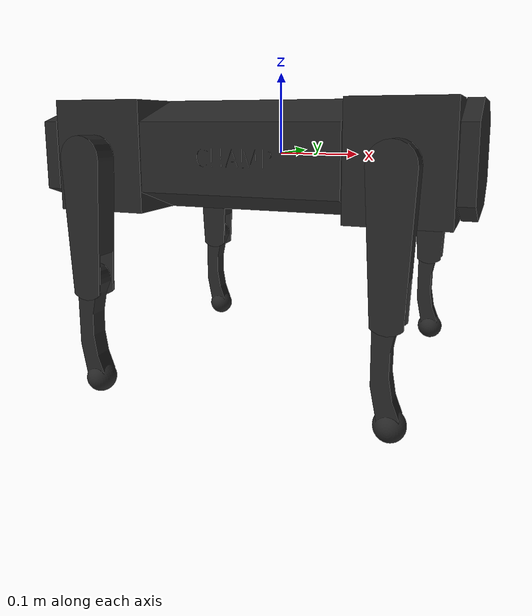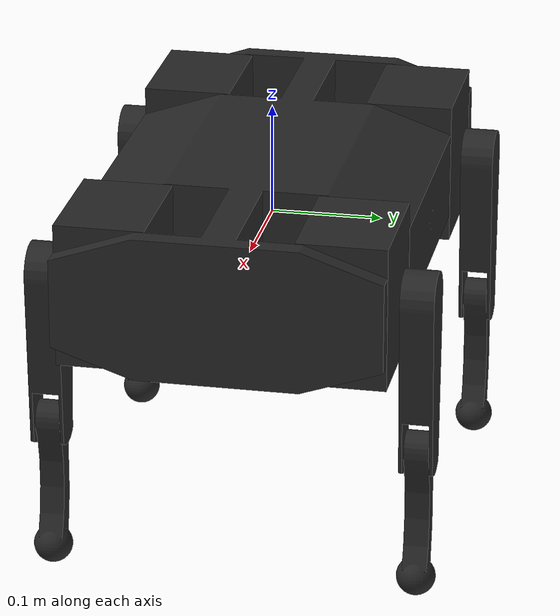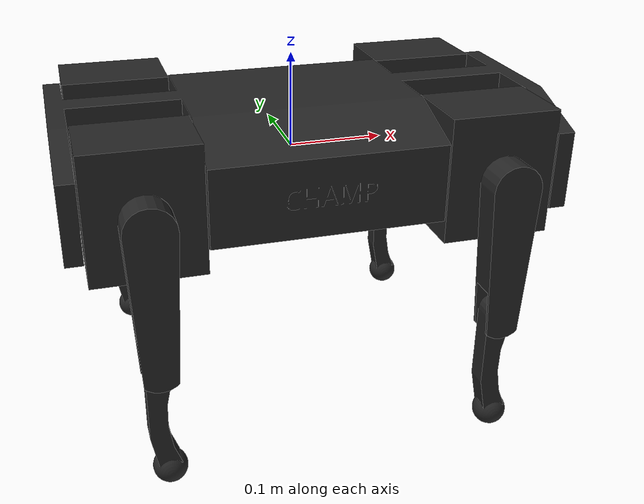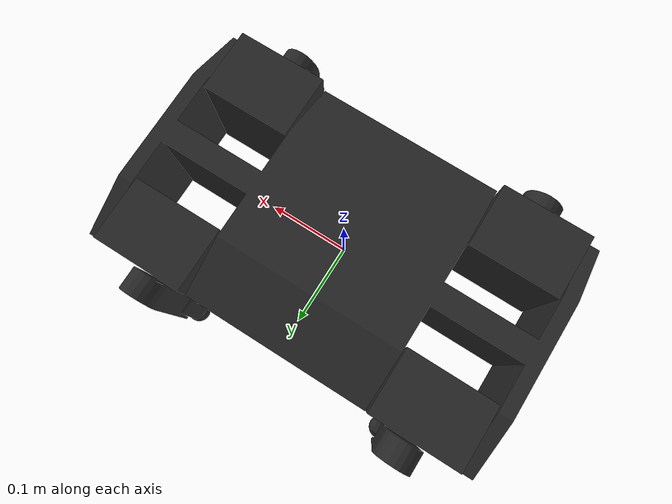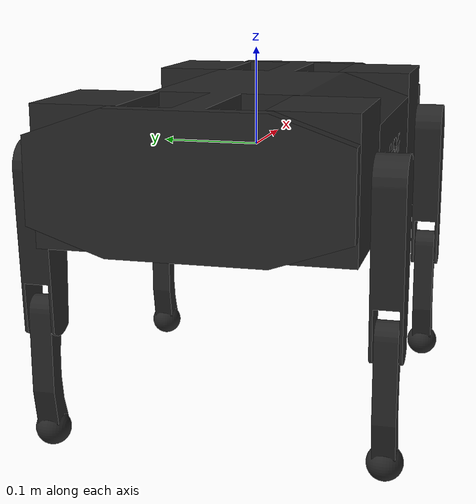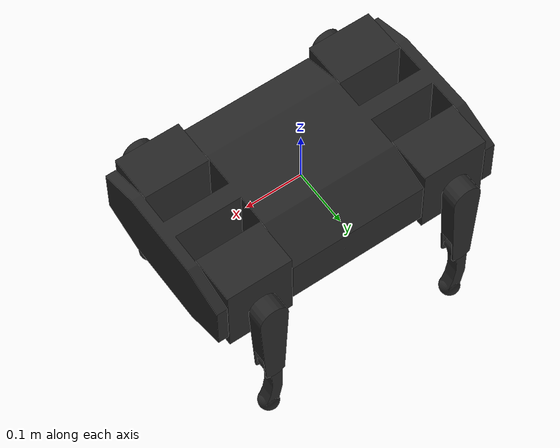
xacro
<?xml version="1.0"?>
<robot name="champ" xmlns:xacro="http://ros.org/wiki/xacro">
    <xacro:include filename="$(find champ_description)/urdf/properties.urdf.xacro" />

    <material name="black">
        <color rgba="0.15 0.15 0.15 1.0" />
    </material>

    <link name="base_link">
        <collision>
            <origin xyz="0 0 0.2" rpy="0 0 0" />
            <geometry>
                <mesh filename="${base_mesh_path}" scale="0.001 0.001 0.001" />
            </geometry>
        </collision>
        <visual>
            <origin xyz="0 0 0" rpy="0 0 0" />
            <geometry>
                <mesh filename="file://$(find champ_description)/meshes/base.stl" scale="0.001 0.001 0.001" />
            </geometry>
            <material name="black" />
        </visual>
    </link>
    <link name="base_inertia">
        <inertial>
            <origin xyz="0 0 0" />
            <mass value="${base_mass}" />
            <inertia ixx="${(1/12) * base_mass * (base_y_length * base_y_length + base_z_length * base_z_length)}" ixy="0.0" ixz="0.0" iyy="${(1/12) * base_mass * (base_x_length * base_x_length + base_z_length * base_z_length)}" iyz="0.0" izz="${(1/12) * base_mass * (base_x_length * base_x_length + base_y_length * base_y_length)}" />
        </inertial>
    </link>

    <joint name="base_link_to_base_inertia" type="fixed">
        <parent link="base_link" />
        <child link="base_inertia" />
        <origin rpy="0 0 0" xyz="0 0 0" />
    </joint>

    <gazebo reference="base_link">
        <material>Gazebo/FlatBlack</material>
    </gazebo>

    <xacro:include filename="$(find champ_description)/urdf/leg.urdf.xacro" />

    <xacro:champ_leg leg="lf" />
    <xacro:champ_leg leg="lh" />
    <xacro:champ_leg leg="rf" />
    <xacro:champ_leg leg="rh" />

    <xacro:include filename="$(find champ_description)/urdf/simulated_full_sensor_suite.xacro" />

    <gazebo>
        <plugin name="p3d_base_controller" filename="libgazebo_ros_p3d.so">
            <ros>
                <namespace></namespace>
                <remapping>odom:=odom/ground_truth</remapping>
            </ros>
            <body_name>base_link</body_name>
            <update_rate>20</update_rate>
            <xyz_offset>0 0 0</xyz_offset>
            <rpy_offset>0.0 0.0 0.0</rpy_offset>
            <gaussian_noise>0.01</gaussian_noise>
        </plugin>
    </gazebo>

    <gazebo>
        <plugin name="gazebo_ros2_control" filename="libgazebo_ros2_control.so">
            <parameters>$(find champ_bringup)/config/ros2_control.yaml</parameters>
        </plugin>
    </gazebo>

</robot>

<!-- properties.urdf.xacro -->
<robot xmlns:xacro="http://ros.org/wiki/xacro">
    <xacro:property name="base_to_hip_x" value="0.175" />
    <xacro:property name="base_to_hip_y" value="0.105" />
    <xacro:property name="hip_to_upper_leg_distance" value="0.06" />
    <xacro:property name="upper_leg_to_lower_leg_distance" value="0.141" />
    <xacro:property name="lower_leg_to_foot_distance" value="0.141" />

    <xacro:property name="hip_mesh_path" value="file://$(find champ_description)/meshes/hip.stl" />
    <xacro:property name="hip_mass" value="0.250" />
    <xacro:property name="hip_x_length" value="0.112" />
    <xacro:property name="hip_y_length" value="0.08" />
    <xacro:property name="hip_z_length" value="0.130" />

    <xacro:property name="upper_leg_mesh_path" value="file://$(find champ_description)/meshes/upper_leg.stl" />
    <xacro:property name="upper_leg_mass" value="0.125" />
    <xacro:property name="upper_leg_x_length" value="0.05" />
    <xacro:property name="upper_leg_y_length" value="0.03" />
    <xacro:property name="upper_leg_z_length" value="0.1905" />

    <xacro:property name="lower_leg_mesh_path" value="file://$(find champ_description)/meshes/lower_leg.stl" />
    <xacro:property name="lower_leg_mass" value="0.125" />
    <xacro:property name="lower_leg_x_length" value="0.039" />
    <xacro:property name="lower_leg_y_length" value="0.022" />
    <xacro:property name="lower_leg_z_length" value="0.156" />

    <xacro:property name="base_mesh_path" value="file://$(find champ_description)/meshes/base.stl" />
    <xacro:property name="base_mass" value="2.0" />
    <xacro:property name="base_x_length" value="0.5" />
    <xacro:property name="base_y_length" value="0.29" />
    <xacro:property name="base_z_length" value="0.130" />
</robot>

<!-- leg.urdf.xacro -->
<robot xmlns:xacro="http://ros.org/wiki/xacro">
    <xacro:macro name="champ_leg" params="leg  ">

        <xacro:if value="${leg == 'lf'}">
            <xacro:property name="base_to_hip_xyz" value="${base_to_hip_x} ${base_to_hip_y} 0" />
            <xacro:property name="hip_to_upper_leg" value="${hip_to_upper_leg_distance}" />
        </xacro:if>

        <xacro:if value="${leg == 'lh'}">
            <xacro:property name="base_to_hip_xyz" value="-${base_to_hip_x} ${base_to_hip_y} 0" />
            <xacro:property name="hip_to_upper_leg" value="${hip_to_upper_leg_distance}" />
        </xacro:if>

        <xacro:if value="${leg == 'rf'}">
            <xacro:property name="base_to_hip_xyz" value="${base_to_hip_x} -${base_to_hip_y} 0" />
            <xacro:property name="hip_to_upper_leg" value="-${hip_to_upper_leg_distance}" />
        </xacro:if>

        <xacro:if value="${leg == 'rh'}">
            <xacro:property name="base_to_hip_xyz" value="-${base_to_hip_x} -${base_to_hip_y} 0" />
            <xacro:property name="hip_to_upper_leg" value="-${hip_to_upper_leg_distance}" />
        </xacro:if>

        <link name="${leg}_hip_debug_link" />

        <link name="${leg}_hip_link">
            <inertial>
                <mass value="${hip_mass}" />
                <inertia ixx="${(1/12) * hip_mass * (hip_y_length * hip_y_length + hip_z_length * hip_z_length)}" ixy="0.0" ixz="0.0" iyy="${(1/12) * hip_mass * (hip_x_length * hip_x_length + hip_z_length * hip_z_length)}" iyz="0.0" izz="${(1/12) * hip_mass * (hip_x_length * hip_x_length + hip_y_length * hip_y_length)}" />
            </inertial>
            <collision>
                <origin xyz="0 0 0" rpy="0 0 0" />
                <geometry>
                    <mesh filename="${hip_mesh_path}" scale="0.001 0.001 0.001" />
                </geometry>
            </collision>
            <visual>
                <origin xyz="0 0 0" rpy="0 0 0" />
                <geometry>
                    <mesh filename="${hip_mesh_path}" scale="0.001 0.001 0.001" />
                </geometry>
                <material name="black" />
            </visual>
        </link>
        <gazebo reference="${leg}_hip_link">
            <material>Gazebo/FlatBlack</material>
        </gazebo>

        <link name="${leg}_upper_leg_link">
            <inertial>
                <origin xyz="0 0 -${(upper_leg_z_length / 2) - ((upper_leg_z_length - upper_leg_to_lower_leg_distance) / 2)}" />
                <mass value="${upper_leg_mass}" />
                <inertia ixx="${(1/12) * upper_leg_mass * (upper_leg_y_length * upper_leg_y_length + upper_leg_z_length * upper_leg_z_length)}" ixy="0.0" ixz="0.0" iyy="${(1/12) * upper_leg_mass * (upper_leg_x_length * upper_leg_x_length + upper_leg_z_length * upper_leg_z_length)}" iyz="0.0" izz="${(1/12) * upper_leg_mass * (upper_leg_x_length * upper_leg_x_length + upper_leg_y_length * upper_leg_y_length)}" />
            </inertial>
            <collision>
                <origin xyz="0 0 0" rpy="0 0 0" />
                <geometry>
                    <mesh filename="${upper_leg_mesh_path}" scale="0.001 0.001 0.001" />
                </geometry>
            </collision>
            <visual>
                <origin xyz="0 0 0" rpy="0 0 0" />
                <geometry>
                    <mesh filename="${upper_leg_mesh_path}" scale="0.001 0.001 0.001" />
                </geometry>
                <material name="black" />
            </visual>
        </link>
        <gazebo reference="${leg}_upper_leg_link">
            <material>Gazebo/FlatBlack</material>
        </gazebo>

        <link name="${leg}_lower_leg_link">
            <inertial>
                <origin xyz="0 0 -${(lower_leg_to_foot_distance - (lower_leg_z_length - lower_leg_to_foot_distance)) / 2}" />
                <mass value="${lower_leg_mass}" />
                <inertia ixx="${(1/12) * lower_leg_mass * (lower_leg_y_length * lower_leg_y_length + lower_leg_z_length * lower_leg_z_length)}" ixy="0.0" ixz="0.0" iyy="${(1/12) * lower_leg_mass * (lower_leg_x_length * lower_leg_x_length + lower_leg_z_length * lower_leg_z_length)}" iyz="0.0" izz="${(1/12) * lower_leg_mass * (lower_leg_x_length * lower_leg_x_length + lower_leg_y_length * lower_leg_y_length)}" />
            </inertial>
            <collision>
                <origin xyz="0 0 0" rpy="0 0 0" />
                <geometry>
                    <mesh filename="${lower_leg_mesh_path}" scale="0.001 0.001 0.001" />
                </geometry>
            </collision>
            <visual>
                <origin xyz="0 0 0" rpy="0 0 0" />
                <geometry>
                    <mesh filename="${lower_leg_mesh_path}" scale="0.001 0.001 0.001" />
                </geometry>
                <material name="black" />
            </visual>
        </link>

        <gazebo reference="${leg}_lower_leg_link">
            <fdir1>1 0 0</fdir1>
            <mu1>100</mu1>
            <mu2>100</mu2>
            <minDepth>0.001</minDepth>
            <material>Gazebo/Red</material>
        </gazebo>

        <link name="${leg}_foot_link" />

        <joint name="${leg}_debug_joint" type="fixed">
            <parent link="base_link" />
            <child link="${leg}_hip_debug_link" />
            <origin xyz="${base_to_hip_xyz}" rpy="0 0 0" />
        </joint>

        <joint name="${leg}_hip_joint" type="revolute">
            <axis xyz="1 0 0" />
            <limit effort="25" lower="-${pi}" upper="${pi}" velocity="1.5" />
            <parent link="base_link" />
            <child link="${leg}_hip_link" />
            <origin xyz="${base_to_hip_xyz}" rpy="0 0 0" />
        </joint>

        <joint name="${leg}_upper_leg_joint" type="revolute">
            <axis xyz="0 1 0" />
            <limit effort="25" lower="-${pi}" upper="${pi}" velocity="1.5" />
            <parent link="${leg}_hip_link" />
            <child link="${leg}_upper_leg_link" />
            <origin xyz="0 ${hip_to_upper_leg} 0" rpy="0 0 0" />
        </joint>

        <joint name="${leg}_lower_leg_joint" type="revolute">
            <axis xyz="0 1 0" />
            <limit effort="25" lower="-${pi}" upper="${pi}" velocity="1.5" />
            <parent link="${leg}_upper_leg_link" />
            <child link="${leg}_lower_leg_link" />
            <origin xyz="0 0 -${upper_leg_to_lower_leg_distance}" rpy="0 0 0" />
        </joint>

        <joint name="${leg}_foot_joint" type="fixed">
            <parent link="${leg}_lower_leg_link" />
            <child link="${leg}_foot_link" />
            <origin xyz="0 0 -${lower_leg_to_foot_distance}" rpy="0 0 0" />
        </joint>

        <ros2_control name="GazeboSystem" type="system">
            <hardware>
                <plugin>gazebo_ros2_control/GazeboSystem</plugin>
            </hardware>
            <joint name="${leg}_hip_joint">
                <command_interface name="position">
                    <param name="min">-${pi}</param>
                    <param name="max">${pi}</param>
                </command_interface>
                <state_interface name="position" />
                <state_interface name="velocity" />
                <state_interface name="effort" />
            </joint>
            <joint name="${leg}_upper_leg_joint">
                <command_interface name="position">
                    <param name="min">-${pi}</param>
                    <param name="max">${pi}</param>
                </command_interface>
                <state_interface name="position" />
                <state_interface name="velocity" />
                <state_interface name="effort" />
            </joint>
            <joint name="${leg}_lower_leg_joint">
                <command_interface name="position">
                    <param name="min">-${pi}</param>
                    <param name="max">${pi}</param>
                </command_interface>
                <state_interface name="position" />
                <state_interface name="velocity" />
                <state_interface name="effort" />
            </joint>
        </ros2_control>

        <transmission name="${leg}_hip_joint_trans">
            <type>transmission_interface/SimpleTransmission</type>
            <joint name="${leg}_hip_joint">
                <hardwareInterface>hardware_interface/EffortJointInterface</hardwareInterface>
            </joint>
            <actuator name="${leg}_hip_joint_motor">
                <hardwareInterface>hardware_interface/EffortJointInterface</hardwareInterface>
                <mechanicalReduction>1</mechanicalReduction>
            </actuator>
        </transmission>

        <transmission name="${leg}_upper_leg_joint_trans">
            <type>transmission_interface/SimpleTransmission</type>
            <joint name="${leg}_upper_leg_joint">
                <hardwareInterface>hardware_interface/EffortJointInterface</hardwareInterface>
            </joint>
            <actuator name="${leg}_upper_leg_joint_motor">
                <hardwareInterface>hardware_interface/EffortJointInterface</hardwareInterface>
                <mechanicalReduction>1</mechanicalReduction>
            </actuator>
        </transmission>

        <transmission name="${leg}_lower_leg_joint_trans">
            <type>transmission_interface/SimpleTransmission</type>
            <joint name="${leg}_lower_leg_joint">
                <hardwareInterface>hardware_interface/EffortJointInterface</hardwareInterface>
            </joint>
            <actuator name="${leg}_lower_joint_motor">
                <hardwareInterface>hardware_interface/EffortJointInterface</hardwareInterface>
                <mechanicalReduction>1</mechanicalReduction>
            </actuator>
        </transmission>
    </xacro:macro>
</robot>

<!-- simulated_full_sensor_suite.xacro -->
<robot xmlns:xacro="http://www.ros.org/wiki/xacro" name="sensor_frames">

  <xacro:arg name="robot_name" default="" />
  <xacro:arg name="tf_prefix" default="" />

  <link name="base_sensor_link" />
  <link name="imu_link"></link>
  <link name="velodyne_link"></link>
  <link name="gps_link"></link>
  <link name="camera_bottom_screw_frame"></link>
  <link name="camera_link"></link>
  <link name="camera_depth_frame"></link>
  <link name="camera_depth_optical_frame"></link>
  <link name="camera_color_frame"></link>
  <link name="camera_color_optical_frame"></link>
  <link name="camera_left_ir_frame"></link>
  <link name="camera_left_ir_optical_frame"></link>
  <link name="camera_right_ir_frame"></link>
  <link name="camera_right_ir_optical_frame"></link>
  <link name="wide_angle_camera_link"></link>

  <!-- note that base_link is coming from thorvald_model.xacro -->
  <joint name="base_sensor_joint" type="fixed">
    <parent link="base_link" />
    <child link="base_sensor_link" />
    <origin xyz="0.0 0 0.1" rpy="0 0 0" />
  </joint>
  <joint name="imu_joint" type="fixed">
    <parent link="base_sensor_link" />
    <child link="imu_link" />
    <origin xyz="0 0 1.2" rpy="0 0 0" />
  </joint>
  <joint name="velodyne_joint" type="fixed">
    <parent link="base_sensor_link" />
    <child link="velodyne_link" />
    <origin xyz="0 0 0.9" rpy="0 0 0" />
  </joint>
  <joint name="gps_joint" type="fixed">
    <parent link="base_sensor_link" />
    <child link="gps_link" />
    <origin xyz="0 0 0.4" rpy="0 0 0" />
  </joint>
  <joint name="camera_joint" type="fixed">
    <parent link="base_sensor_link" />
    <child link="camera_bottom_screw_frame" />
    <pose xyz="0.3 0.0 0.8" rpy="0 0 0" />
  </joint>
  <joint name="camera_link_joint" type="fixed">
    <parent link="camera_bottom_screw_frame" />
    <child link="camera_link" />
    <pose xyz="0 0.0175 0.0125 " rpy="0 0 0" />
  </joint>
  <joint name="camera_depth_joint" type="fixed">
    <parent link="camera_link" />
    <child link="camera_depth_frame" />
    <pose xyz="0 0 0" rpy="0 0 0" />
  </joint>
  <joint name="camera_depth_optical_joint" type="fixed">
    <parent link="camera_depth_frame" />
    <child link="camera_depth_optical_frame" />
    <pose xyz="0 0 0 " rpy="-1.57 0 -1.57" />
  </joint>
  <joint name="camera_color_joint" type="fixed">
    <parent link="camera_depth_frame" />
    <child link="camera_color_frame" />
    <pose xyz="0 0 0" rpy="0 0 0" />
  </joint>
  <joint name="camera_color_optical_joint" type="fixed">
    <parent link="camera_color_frame" />
    <child link="camera_color_optical_frame" />
    <pose xyz="0 0 0 " rpy="-1.57 0 -1.57" />
  </joint>
  <joint name="camera_left_ir_joint" type="fixed">
    <parent link="camera_depth_frame" />
    <child link="camera_left_ir_frame" />
    <pose xyz="0 0 0 " rpy="0 0 0 " />
  </joint>
  <joint name="camera_left_ir_optical_joint" type="fixed">
    <parent link="camera_left_ir_frame" />
    <child link="camera_left_ir_optical_frame" />
    <pose xyz="0 0 0 " rpy="-1.57 0 -1.57" />
  </joint>
  <joint name="camera_right_ir_joint" type="fixed">
    <parent link="camera_depth_frame" />
    <child link="camera_right_ir_frame" />
    <pose xyz="0 -0.050 0 " rpy="0 0 0" />
  </joint>
  <joint name="camera_right_ir_optical_joint" type="fixed">
    <parent link="camera_right_ir_frame" />
    <child link="camera_right_ir_optical_frame" />
    <pose xyz="0 0 0 " rpy="-1.57 0 -1.57" />
  </joint>
  <joint name="wide_angle_camera_joint" type="fixed">
    <parent link="base_sensor_link" />
    <child link="wide_angle_camera_link" />
    <pose xyz="0.3 0.0 0.9" rpy="0 0 0" />
  </joint>

  <gazebo reference="base_link">
    <material>Gazebo/Orange</material>
  </gazebo>
  <gazebo reference="base_sensor_link">
    <material>Gazebo/Orange</material>
  </gazebo>
  <gazebo reference="imu_link">
    <material>Gazebo/Orange</material>
  </gazebo>
  <gazebo reference="velodyne_link">
    <material>Gazebo/Orange</material>
  </gazebo>
  <gazebo reference="gps_link">
    <material>Gazebo/Orange</material>
  </gazebo>
  <gazebo reference="camera_bottom_screw_frame">
    <material>Gazebo/Orange</material>
  </gazebo>
  <gazebo reference="camera_link">
    <material>Gazebo/Orange</material>
  </gazebo>
  <gazebo reference="camera_depth_frame">
    <material>Gazebo/Orange</material>
  </gazebo>
  <gazebo reference="camera_depth_optical_frame">
    <material>Gazebo/Orange</material>
  </gazebo>
  <gazebo reference="camera_color_frame">
    <material>Gazebo/Orange</material>
  </gazebo>
  <gazebo reference="camera_color_optical_frame">
    <material>Gazebo/Orange</material>
  </gazebo>
  <gazebo reference="camera_left_ir_frame">
    <material>Gazebo/Orange</material>
  </gazebo>
  <gazebo reference="camera_left_ir_optical_frame">
    <material>Gazebo/Orange</material>
  </gazebo>
  <gazebo reference="camera_right_ir_frame">
    <material>Gazebo/Orange</material>
  </gazebo>
  <gazebo reference="camera_right_ir_optical_frame">
    <material>Gazebo/Orange</material>
  </gazebo>
  <gazebo reference="wide_angle_camera_link">
    <material>Gazebo/Orange</material>
  </gazebo>

</robot>
